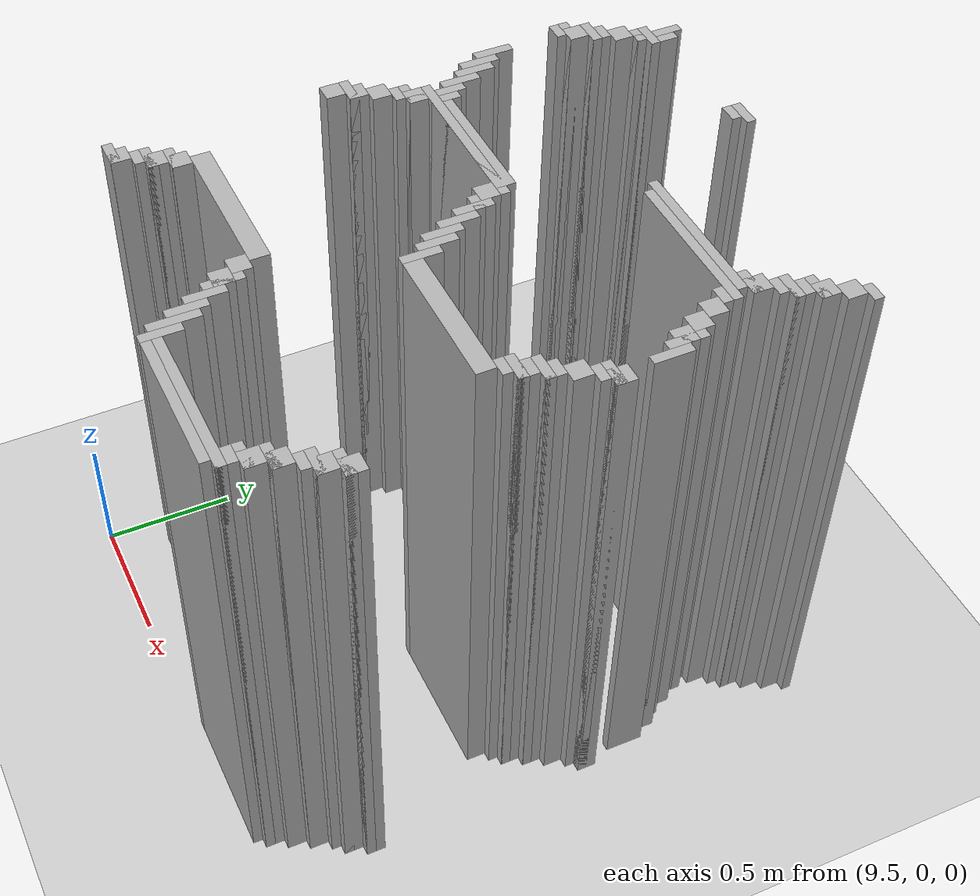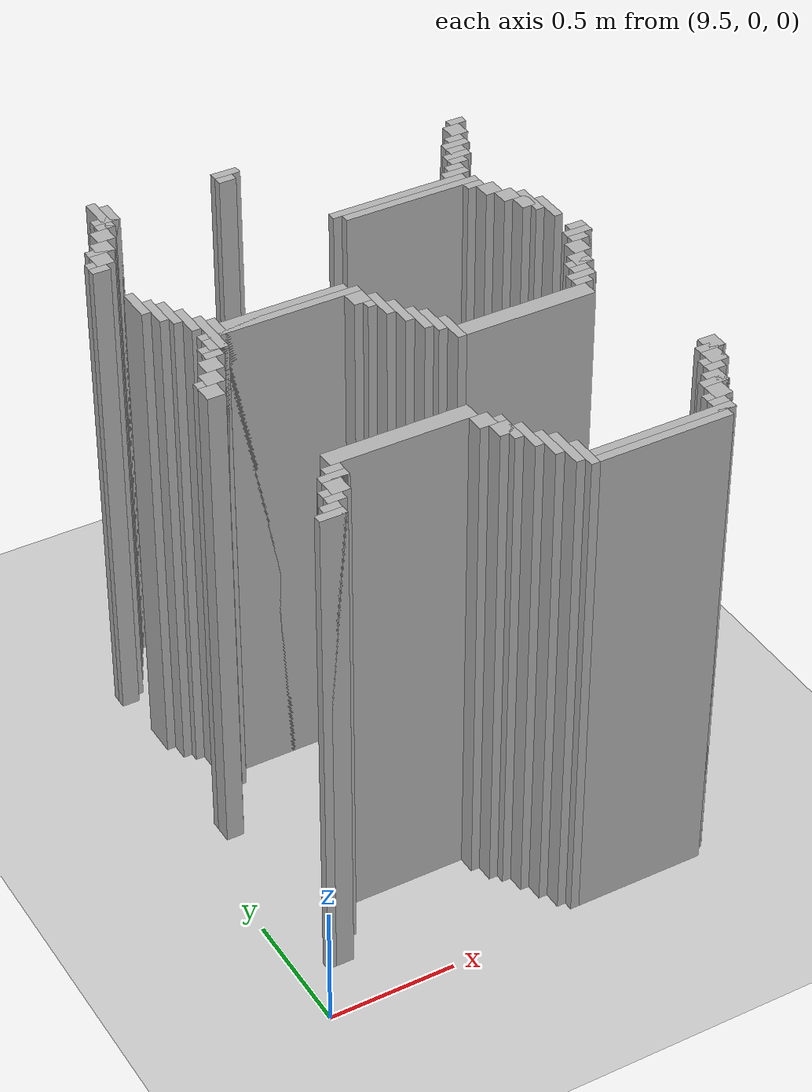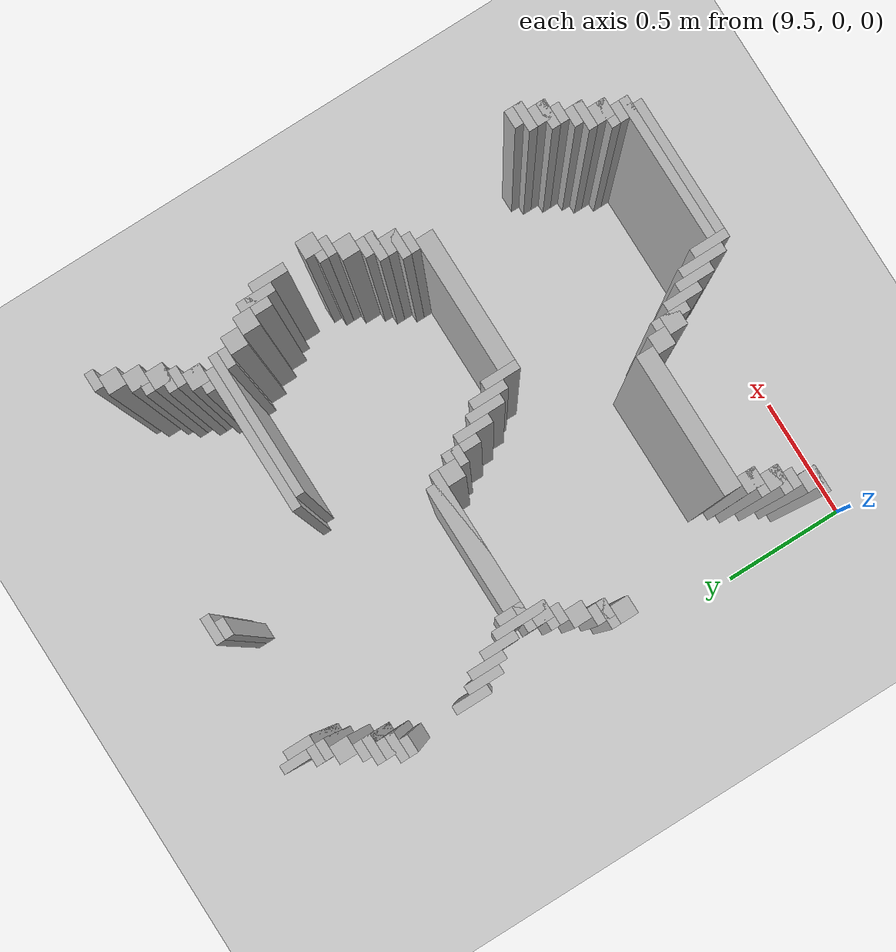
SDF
<sdf version="1.6">
 <world name="slam_world">
  <model name="ground_plane">
   <static>true</static>
   <link name="link">
    <collision name="collision">
     <geometry><plane><normal>0 0 1</normal><size>100 100</size></plane></geometry>
    </collision>
    <visual name="visual">
     <geometry><plane><normal>0 0 1</normal><size>100 100</size></plane></geometry>
     <material>
      <ambient>0.8 0.8 0.8 1</ambient>
      <diffuse>0.8 0.8 0.8 1</diffuse>
      <specular>0.8 0.8 0.8 1</specular>
     </material>
    </visual>
   </link>
  </model>
  <model name="wall_5127">
   <static>true</static>
   <pose>9.796983758700696 2.1751740139211138 1.0 0 0 0</pose>
   <link name="link">
    <collision name="collision">
     <geometry><box><size>0.03480278422273782 0.17401392111368907 2.0</size></box></geometry>
    </collision>
    <visual name="visual">
     <geometry><box><size>0.03480278422273782 0.17401392111368907 2.0</size></box></geometry>
     <material><ambient>0.5 0.5 0.5 1</ambient><diffuse>0.7 0.7 0.7 1</diffuse></material>
    </visual>
   </link>
  </model>
  <model name="wall_5141">
   <static>true</static>
   <pose>9.831786542923433 2.1751740139211138 1.0 0 0 0</pose>
   <link name="link">
    <collision name="collision">
     <geometry><box><size>0.03480278422273782 0.10440835266821345 2.0</size></box></geometry>
    </collision>
    <visual name="visual">
     <geometry><box><size>0.03480278422273782 0.10440835266821345 2.0</size></box></geometry>
     <material><ambient>0.5 0.5 0.5 1</ambient><diffuse>0.7 0.7 0.7 1</diffuse></material>
    </visual>
   </link>
  </model>
  <model name="wall_5142">
   <static>true</static>
   <pose>10.319025522041763 2.2099767981438516 1.0 0 0 0</pose>
   <link name="link">
    <collision name="collision">
     <geometry><box><size>0.10440835266821345 0.03480278422273782 2.0</size></box></geometry>
    </collision>
    <visual name="visual">
     <geometry><box><size>0.10440835266821345 0.03480278422273782 2.0</size></box></geometry>
     <material><ambient>0.5 0.5 0.5 1</ambient><diffuse>0.7 0.7 0.7 1</diffuse></material>
    </visual>
   </link>
  </model>
  <model name="wall_5155">
   <static>true</static>
   <pose>10.301624129930394 2.1751740139211138 1.0 0 0 0</pose>
   <link name="link">
    <collision name="collision">
     <geometry><box><size>0.06960556844547564 0.03480278422273782 2.0</size></box></geometry>
    </collision>
    <visual name="visual">
     <geometry><box><size>0.06960556844547564 0.03480278422273782 2.0</size></box></geometry>
     <material><ambient>0.5 0.5 0.5 1</ambient><diffuse>0.7 0.7 0.7 1</diffuse></material>
    </visual>
   </link>
  </model>
  <model name="wall_5171">
   <static>true</static>
   <pose>9.796983758700696 2.140371229698376 1.0 0 0 0</pose>
   <link name="link">
    <collision name="collision">
     <geometry><box><size>0.10440835266821345 0.03480278422273782 2.0</size></box></geometry>
    </collision>
    <visual name="visual">
     <geometry><box><size>0.10440835266821345 0.03480278422273782 2.0</size></box></geometry>
     <material><ambient>0.5 0.5 0.5 1</ambient><diffuse>0.7 0.7 0.7 1</diffuse></material>
    </visual>
   </link>
  </model>
  <model name="wall_5186">
   <static>true</static>
   <pose>9.779582366589327 2.105568445475638 1.0 0 0 0</pose>
   <link name="link">
    <collision name="collision">
     <geometry><box><size>0.06960556844547564 0.03480278422273782 2.0</size></box></geometry>
    </collision>
    <visual name="visual">
     <geometry><box><size>0.06960556844547564 0.03480278422273782 2.0</size></box></geometry>
     <material><ambient>0.5 0.5 0.5 1</ambient><diffuse>0.7 0.7 0.7 1</diffuse></material>
    </visual>
   </link>
  </model>
  <model name="wall_5187">
   <static>true</static>
   <pose>11.241299303944315 2.105568445475638 1.0 0 0 0</pose>
   <link name="link">
    <collision name="collision">
     <geometry><box><size>0.06960556844547564 0.03480278422273782 2.0</size></box></geometry>
    </collision>
    <visual name="visual">
     <geometry><box><size>0.06960556844547564 0.03480278422273782 2.0</size></box></geometry>
     <material><ambient>0.5 0.5 0.5 1</ambient><diffuse>0.7 0.7 0.7 1</diffuse></material>
    </visual>
   </link>
  </model>
  <model name="wall_5201">
   <static>true</static>
   <pose>9.744779582366588 2.053364269141531 1.0 0 0 0</pose>
   <link name="link">
    <collision name="collision">
     <geometry><box><size>0.06960556844547564 0.06960556844547564 2.0</size></box></geometry>
    </collision>
    <visual name="visual">
     <geometry><box><size>0.06960556844547564 0.06960556844547564 2.0</size></box></geometry>
     <material><ambient>0.5 0.5 0.5 1</ambient><diffuse>0.7 0.7 0.7 1</diffuse></material>
    </visual>
   </link>
  </model>
  <model name="wall_5202">
   <static>true</static>
   <pose>11.206496519721577 2.053364269141531 1.0 0 0 0</pose>
   <link name="link">
    <collision name="collision">
     <geometry><box><size>0.06960556844547564 0.06960556844547564 2.0</size></box></geometry>
    </collision>
    <visual name="visual">
     <geometry><box><size>0.06960556844547564 0.06960556844547564 2.0</size></box></geometry>
     <material><ambient>0.5 0.5 0.5 1</ambient><diffuse>0.7 0.7 0.7 1</diffuse></material>
    </visual>
   </link>
  </model>
  <model name="wall_5216">
   <static>true</static>
   <pose>9.70997679814385 1.9837587006960555 1.0 0 0 0</pose>
   <link name="link">
    <collision name="collision">
     <geometry><box><size>0.06960556844547564 0.06960556844547564 2.0</size></box></geometry>
    </collision>
    <visual name="visual">
     <geometry><box><size>0.06960556844547564 0.06960556844547564 2.0</size></box></geometry>
     <material><ambient>0.5 0.5 0.5 1</ambient><diffuse>0.7 0.7 0.7 1</diffuse></material>
    </visual>
   </link>
  </model>
  <model name="wall_5217">
   <static>true</static>
   <pose>11.17169373549884 1.9837587006960555 1.0 0 0 0</pose>
   <link name="link">
    <collision name="collision">
     <geometry><box><size>0.06960556844547564 0.06960556844547564 2.0</size></box></geometry>
    </collision>
    <visual name="visual">
     <geometry><box><size>0.06960556844547564 0.06960556844547564 2.0</size></box></geometry>
     <material><ambient>0.5 0.5 0.5 1</ambient><diffuse>0.7 0.7 0.7 1</diffuse></material>
    </visual>
   </link>
  </model>
  <model name="wall_5231">
   <static>true</static>
   <pose>9.692575406032482 1.9663573085846866 1.0 0 0 0</pose>
   <link name="link">
    <collision name="collision">
     <geometry><box><size>0.10440835266821345 0.03480278422273782 2.0</size></box></geometry>
    </collision>
    <visual name="visual">
     <geometry><box><size>0.10440835266821345 0.03480278422273782 2.0</size></box></geometry>
     <material><ambient>0.5 0.5 0.5 1</ambient><diffuse>0.7 0.7 0.7 1</diffuse></material>
    </visual>
   </link>
  </model>
  <model name="wall_5232">
   <static>true</static>
   <pose>11.154292343387471 1.9663573085846866 1.0 0 0 0</pose>
   <link name="link">
    <collision name="collision">
     <geometry><box><size>0.10440835266821345 0.03480278422273782 2.0</size></box></geometry>
    </collision>
    <visual name="visual">
     <geometry><box><size>0.10440835266821345 0.03480278422273782 2.0</size></box></geometry>
     <material><ambient>0.5 0.5 0.5 1</ambient><diffuse>0.7 0.7 0.7 1</diffuse></material>
    </visual>
   </link>
  </model>
  <model name="wall_5243">
   <static>true</static>
   <pose>9.675174013921113 1.91415313225058 1.0 0 0 0</pose>
   <link name="link">
    <collision name="collision">
     <geometry><box><size>0.06960556844547564 0.06960556844547564 2.0</size></box></geometry>
    </collision>
    <visual name="visual">
     <geometry><box><size>0.06960556844547564 0.06960556844547564 2.0</size></box></geometry>
     <material><ambient>0.5 0.5 0.5 1</ambient><diffuse>0.7 0.7 0.7 1</diffuse></material>
    </visual>
   </link>
  </model>
  <model name="wall_5244">
   <static>true</static>
   <pose>11.1368909512761 1.91415313225058 1.0 0 0 0</pose>
   <link name="link">
    <collision name="collision">
     <geometry><box><size>0.06960556844547564 0.06960556844547564 2.0</size></box></geometry>
    </collision>
    <visual name="visual">
     <geometry><box><size>0.06960556844547564 0.06960556844547564 2.0</size></box></geometry>
     <material><ambient>0.5 0.5 0.5 1</ambient><diffuse>0.7 0.7 0.7 1</diffuse></material>
    </visual>
   </link>
  </model>
  <model name="wall_5256">
   <static>true</static>
   <pose>9.657772621809745 1.896751740139211 1.0 0 0 0</pose>
   <link name="link">
    <collision name="collision">
     <geometry><box><size>0.10440835266821345 0.03480278422273782 2.0</size></box></geometry>
    </collision>
    <visual name="visual">
     <geometry><box><size>0.10440835266821345 0.03480278422273782 2.0</size></box></geometry>
     <material><ambient>0.5 0.5 0.5 1</ambient><diffuse>0.7 0.7 0.7 1</diffuse></material>
    </visual>
   </link>
  </model>
  <model name="wall_5257">
   <static>true</static>
   <pose>11.119489559164732 1.896751740139211 1.0 0 0 0</pose>
   <link name="link">
    <collision name="collision">
     <geometry><box><size>0.10440835266821345 0.03480278422273782 2.0</size></box></geometry>
    </collision>
    <visual name="visual">
     <geometry><box><size>0.10440835266821345 0.03480278422273782 2.0</size></box></geometry>
     <material><ambient>0.5 0.5 0.5 1</ambient><diffuse>0.7 0.7 0.7 1</diffuse></material>
    </visual>
   </link>
  </model>
  <model name="wall_5268">
   <static>true</static>
   <pose>9.640371229698376 1.8619489559164732 1.0 0 0 0</pose>
   <link name="link">
    <collision name="collision">
     <geometry><box><size>0.06960556844547564 0.03480278422273782 2.0</size></box></geometry>
    </collision>
    <visual name="visual">
     <geometry><box><size>0.06960556844547564 0.03480278422273782 2.0</size></box></geometry>
     <material><ambient>0.5 0.5 0.5 1</ambient><diffuse>0.7 0.7 0.7 1</diffuse></material>
    </visual>
   </link>
  </model>
  <model name="wall_5269">
   <static>true</static>
   <pose>11.102088167053363 1.8619489559164732 1.0 0 0 0</pose>
   <link name="link">
    <collision name="collision">
     <geometry><box><size>0.06960556844547564 0.03480278422273782 2.0</size></box></geometry>
    </collision>
    <visual name="visual">
     <geometry><box><size>0.06960556844547564 0.03480278422273782 2.0</size></box></geometry>
     <material><ambient>0.5 0.5 0.5 1</ambient><diffuse>0.7 0.7 0.7 1</diffuse></material>
    </visual>
   </link>
  </model>
  <model name="wall_5281">
   <static>true</static>
   <pose>11.067285382830626 1.8097447795823665 1.0 0 0 0</pose>
   <link name="link">
    <collision name="collision">
     <geometry><box><size>0.06960556844547564 0.06960556844547564 2.0</size></box></geometry>
    </collision>
    <visual name="visual">
     <geometry><box><size>0.06960556844547564 0.06960556844547564 2.0</size></box></geometry>
     <material><ambient>0.5 0.5 0.5 1</ambient><diffuse>0.7 0.7 0.7 1</diffuse></material>
    </visual>
   </link>
  </model>
  <model name="wall_5296">
   <static>true</static>
   <pose>11.049883990719257 1.7923433874709975 1.0 0 0 0</pose>
   <link name="link">
    <collision name="collision">
     <geometry><box><size>0.10440835266821345 0.03480278422273782 2.0</size></box></geometry>
    </collision>
    <visual name="visual">
     <geometry><box><size>0.10440835266821345 0.03480278422273782 2.0</size></box></geometry>
     <material><ambient>0.5 0.5 0.5 1</ambient><diffuse>0.7 0.7 0.7 1</diffuse></material>
    </visual>
   </link>
  </model>
  <model name="wall_5311">
   <static>true</static>
   <pose>10.788863109048723 1.75754060324826 1.0 0 0 0</pose>
   <link name="link">
    <collision name="collision">
     <geometry><box><size>0.5568445475638051 0.03480278422273782 2.0</size></box></geometry>
    </collision>
    <visual name="visual">
     <geometry><box><size>0.5568445475638051 0.03480278422273782 2.0</size></box></geometry>
     <material><ambient>0.5 0.5 0.5 1</ambient><diffuse>0.7 0.7 0.7 1</diffuse></material>
    </visual>
   </link>
  </model>
  <model name="wall_5323">
   <static>true</static>
   <pose>10.82366589327146 1.722737819025522 1.0 0 0 0</pose>
   <link name="link">
    <collision name="collision">
     <geometry><box><size>0.5568445475638051 0.03480278422273782 2.0</size></box></geometry>
    </collision>
    <visual name="visual">
     <geometry><box><size>0.5568445475638051 0.03480278422273782 2.0</size></box></geometry>
     <material><ambient>0.5 0.5 0.5 1</ambient><diffuse>0.7 0.7 0.7 1</diffuse></material>
    </visual>
   </link>
  </model>
  <model name="wall_5335">
   <static>true</static>
   <pose>11.067285382830626 1.6879350348027842 1.0 0 0 0</pose>
   <link name="link">
    <collision name="collision">
     <geometry><box><size>0.06960556844547564 0.03480278422273782 2.0</size></box></geometry>
    </collision>
    <visual name="visual">
     <geometry><box><size>0.06960556844547564 0.03480278422273782 2.0</size></box></geometry>
     <material><ambient>0.5 0.5 0.5 1</ambient><diffuse>0.7 0.7 0.7 1</diffuse></material>
    </visual>
   </link>
  </model>
  <model name="wall_5347">
   <static>true</static>
   <pose>9.657772621809745 1.6009280742459395 1.0 0 0 0</pose>
   <link name="link">
    <collision name="collision">
     <geometry><box><size>0.03480278422273782 0.13921113689095127 2.0</size></box></geometry>
    </collision>
    <visual name="visual">
     <geometry><box><size>0.03480278422273782 0.13921113689095127 2.0</size></box></geometry>
     <material><ambient>0.5 0.5 0.5 1</ambient><diffuse>0.7 0.7 0.7 1</diffuse></material>
    </visual>
   </link>
  </model>
  <model name="wall_5348">
   <static>true</static>
   <pose>11.102088167053363 1.6357308584686774 1.0 0 0 0</pose>
   <link name="link">
    <collision name="collision">
     <geometry><box><size>0.06960556844547564 0.06960556844547564 2.0</size></box></geometry>
    </collision>
    <visual name="visual">
     <geometry><box><size>0.06960556844547564 0.06960556844547564 2.0</size></box></geometry>
     <material><ambient>0.5 0.5 0.5 1</ambient><diffuse>0.7 0.7 0.7 1</diffuse></material>
    </visual>
   </link>
  </model>
  <model name="wall_5360">
   <static>true</static>
   <pose>9.692575406032482 1.531322505800464 1.0 0 0 0</pose>
   <link name="link">
    <collision name="collision">
     <geometry><box><size>0.03480278422273782 0.13921113689095127 2.0</size></box></geometry>
    </collision>
    <visual name="visual">
     <geometry><box><size>0.03480278422273782 0.13921113689095127 2.0</size></box></geometry>
     <material><ambient>0.5 0.5 0.5 1</ambient><diffuse>0.7 0.7 0.7 1</diffuse></material>
    </visual>
   </link>
  </model>
  <model name="wall_5361">
   <static>true</static>
   <pose>11.1368909512761 1.5661252900232019 1.0 0 0 0</pose>
   <link name="link">
    <collision name="collision">
     <geometry><box><size>0.06960556844547564 0.06960556844547564 2.0</size></box></geometry>
    </collision>
    <visual name="visual">
     <geometry><box><size>0.06960556844547564 0.06960556844547564 2.0</size></box></geometry>
     <material><ambient>0.5 0.5 0.5 1</ambient><diffuse>0.7 0.7 0.7 1</diffuse></material>
    </visual>
   </link>
  </model>
  <model name="wall_5373">
   <static>true</static>
   <pose>9.72737819025522 1.4965197215777262 1.0 0 0 0</pose>
   <link name="link">
    <collision name="collision">
     <geometry><box><size>0.03480278422273782 0.13921113689095127 2.0</size></box></geometry>
    </collision>
    <visual name="visual">
     <geometry><box><size>0.03480278422273782 0.13921113689095127 2.0</size></box></geometry>
     <material><ambient>0.5 0.5 0.5 1</ambient><diffuse>0.7 0.7 0.7 1</diffuse></material>
    </visual>
   </link>
  </model>
  <model name="wall_5374">
   <static>true</static>
   <pose>11.189095127610209 1.4965197215777262 1.0 0 0 0</pose>
   <link name="link">
    <collision name="collision">
     <geometry><box><size>0.03480278422273782 0.13921113689095127 2.0</size></box></geometry>
    </collision>
    <visual name="visual">
     <geometry><box><size>0.03480278422273782 0.13921113689095127 2.0</size></box></geometry>
     <material><ambient>0.5 0.5 0.5 1</ambient><diffuse>0.7 0.7 0.7 1</diffuse></material>
    </visual>
   </link>
  </model>
  <model name="wall_5384">
   <static>true</static>
   <pose>11.17169373549884 1.4965197215777262 1.0 0 0 0</pose>
   <link name="link">
    <collision name="collision">
     <geometry><box><size>0.06960556844547564 0.06960556844547564 2.0</size></box></geometry>
    </collision>
    <visual name="visual">
     <geometry><box><size>0.06960556844547564 0.06960556844547564 2.0</size></box></geometry>
     <material><ambient>0.5 0.5 0.5 1</ambient><diffuse>0.7 0.7 0.7 1</diffuse></material>
    </visual>
   </link>
  </model>
  <model name="wall_5395">
   <static>true</static>
   <pose>9.762180974477959 1.4269141531322505 1.0 0 0 0</pose>
   <link name="link">
    <collision name="collision">
     <geometry><box><size>0.03480278422273782 0.13921113689095127 2.0</size></box></geometry>
    </collision>
    <visual name="visual">
     <geometry><box><size>0.03480278422273782 0.13921113689095127 2.0</size></box></geometry>
     <material><ambient>0.5 0.5 0.5 1</ambient><diffuse>0.7 0.7 0.7 1</diffuse></material>
    </visual>
   </link>
  </model>
  <model name="wall_5396">
   <static>true</static>
   <pose>11.223897911832946 1.4269141531322505 1.0 0 0 0</pose>
   <link name="link">
    <collision name="collision">
     <geometry><box><size>0.03480278422273782 0.13921113689095127 2.0</size></box></geometry>
    </collision>
    <visual name="visual">
     <geometry><box><size>0.03480278422273782 0.13921113689095127 2.0</size></box></geometry>
     <material><ambient>0.5 0.5 0.5 1</ambient><diffuse>0.7 0.7 0.7 1</diffuse></material>
    </visual>
   </link>
  </model>
  <model name="wall_5415">
   <static>true</static>
   <pose>9.796983758700696 1.322505800464037 1.0 0 0 0</pose>
   <link name="link">
    <collision name="collision">
     <geometry><box><size>0.03480278422273782 0.2088167053364269 2.0</size></box></geometry>
    </collision>
    <visual name="visual">
     <geometry><box><size>0.03480278422273782 0.2088167053364269 2.0</size></box></geometry>
     <material><ambient>0.5 0.5 0.5 1</ambient><diffuse>0.7 0.7 0.7 1</diffuse></material>
    </visual>
   </link>
  </model>
  <model name="wall_5426">
   <static>true</static>
   <pose>9.831786542923433 1.339907192575406 1.0 0 0 0</pose>
   <link name="link">
    <collision name="collision">
     <geometry><box><size>0.03480278422273782 0.10440835266821345 2.0</size></box></geometry>
    </collision>
    <visual name="visual">
     <geometry><box><size>0.03480278422273782 0.10440835266821345 2.0</size></box></geometry>
     <material><ambient>0.5 0.5 0.5 1</ambient><diffuse>0.7 0.7 0.7 1</diffuse></material>
    </visual>
   </link>
  </model>
  <model name="wall_5438">
   <static>true</static>
   <pose>10.092807424593968 1.322505800464037 1.0 0 0 0</pose>
   <link name="link">
    <collision name="collision">
     <geometry><box><size>0.4872389791183295 0.06960556844547564 2.0</size></box></geometry>
    </collision>
    <visual name="visual">
     <geometry><box><size>0.4872389791183295 0.06960556844547564 2.0</size></box></geometry>
     <material><ambient>0.5 0.5 0.5 1</ambient><diffuse>0.7 0.7 0.7 1</diffuse></material>
    </visual>
   </link>
  </model>
  <model name="wall_5450">
   <static>true</static>
   <pose>10.058004640371228 1.3051044083526682 1.0 0 0 0</pose>
   <link name="link">
    <collision name="collision">
     <geometry><box><size>0.6264501160092807 0.03480278422273782 2.0</size></box></geometry>
    </collision>
    <visual name="visual">
     <geometry><box><size>0.6264501160092807 0.03480278422273782 2.0</size></box></geometry>
     <material><ambient>0.5 0.5 0.5 1</ambient><diffuse>0.7 0.7 0.7 1</diffuse></material>
    </visual>
   </link>
  </model>
  <model name="wall_5464">
   <static>true</static>
   <pose>9.779582366589327 1.2529002320185614 1.0 0 0 0</pose>
   <link name="link">
    <collision name="collision">
     <geometry><box><size>0.06960556844547564 0.06960556844547564 2.0</size></box></geometry>
    </collision>
    <visual name="visual">
     <geometry><box><size>0.06960556844547564 0.06960556844547564 2.0</size></box></geometry>
     <material><ambient>0.5 0.5 0.5 1</ambient><diffuse>0.7 0.7 0.7 1</diffuse></material>
    </visual>
   </link>
  </model>
  <model name="wall_5465">
   <static>true</static>
   <pose>10.336426914153131 1.2529002320185614 1.0 0 0 0</pose>
   <link name="link">
    <collision name="collision">
     <geometry><box><size>0.06960556844547564 0.06960556844547564 2.0</size></box></geometry>
    </collision>
    <visual name="visual">
     <geometry><box><size>0.06960556844547564 0.06960556844547564 2.0</size></box></geometry>
     <material><ambient>0.5 0.5 0.5 1</ambient><diffuse>0.7 0.7 0.7 1</diffuse></material>
    </visual>
   </link>
  </model>
  <model name="wall_5466">
   <static>true</static>
   <pose>11.241299303944315 1.2529002320185614 1.0 0 0 0</pose>
   <link name="link">
    <collision name="collision">
     <geometry><box><size>0.06960556844547564 0.06960556844547564 2.0</size></box></geometry>
    </collision>
    <visual name="visual">
     <geometry><box><size>0.06960556844547564 0.06960556844547564 2.0</size></box></geometry>
     <material><ambient>0.5 0.5 0.5 1</ambient><diffuse>0.7 0.7 0.7 1</diffuse></material>
    </visual>
   </link>
  </model>
  <model name="wall_5479">
   <static>true</static>
   <pose>9.762180974477959 1.2354988399071924 1.0 0 0 0</pose>
   <link name="link">
    <collision name="collision">
     <geometry><box><size>0.10440835266821345 0.03480278422273782 2.0</size></box></geometry>
    </collision>
    <visual name="visual">
     <geometry><box><size>0.10440835266821345 0.03480278422273782 2.0</size></box></geometry>
     <material><ambient>0.5 0.5 0.5 1</ambient><diffuse>0.7 0.7 0.7 1</diffuse></material>
    </visual>
   </link>
  </model>
  <model name="wall_5480">
   <static>true</static>
   <pose>10.38863109048724 1.1832946635730859 1.0 0 0 0</pose>
   <link name="link">
    <collision name="collision">
     <geometry><box><size>0.03480278422273782 0.13921113689095127 2.0</size></box></geometry>
    </collision>
    <visual name="visual">
     <geometry><box><size>0.03480278422273782 0.13921113689095127 2.0</size></box></geometry>
     <material><ambient>0.5 0.5 0.5 1</ambient><diffuse>0.7 0.7 0.7 1</diffuse></material>
    </visual>
   </link>
  </model>
  <model name="wall_5481">
   <static>true</static>
   <pose>11.223897911832946 1.2354988399071924 1.0 0 0 0</pose>
   <link name="link">
    <collision name="collision">
     <geometry><box><size>0.10440835266821345 0.03480278422273782 2.0</size></box></geometry>
    </collision>
    <visual name="visual">
     <geometry><box><size>0.10440835266821345 0.03480278422273782 2.0</size></box></geometry>
     <material><ambient>0.5 0.5 0.5 1</ambient><diffuse>0.7 0.7 0.7 1</diffuse></material>
    </visual>
   </link>
  </model>
  <model name="wall_5493">
   <static>true</static>
   <pose>9.744779582366588 1.2006960556844548 1.0 0 0 0</pose>
   <link name="link">
    <collision name="collision">
     <geometry><box><size>0.06960556844547564 0.03480278422273782 2.0</size></box></geometry>
    </collision>
    <visual name="visual">
     <geometry><box><size>0.06960556844547564 0.03480278422273782 2.0</size></box></geometry>
     <material><ambient>0.5 0.5 0.5 1</ambient><diffuse>0.7 0.7 0.7 1</diffuse></material>
    </visual>
   </link>
  </model>
  <model name="wall_5494">
   <static>true</static>
   <pose>10.37122969837587 1.2006960556844548 1.0 0 0 0</pose>
   <link name="link">
    <collision name="collision">
     <geometry><box><size>0.06960556844547564 0.03480278422273782 2.0</size></box></geometry>
    </collision>
    <visual name="visual">
     <geometry><box><size>0.06960556844547564 0.03480278422273782 2.0</size></box></geometry>
     <material><ambient>0.5 0.5 0.5 1</ambient><diffuse>0.7 0.7 0.7 1</diffuse></material>
    </visual>
   </link>
  </model>
  <model name="wall_5495">
   <static>true</static>
   <pose>11.206496519721577 1.2006960556844548 1.0 0 0 0</pose>
   <link name="link">
    <collision name="collision">
     <geometry><box><size>0.06960556844547564 0.03480278422273782 2.0</size></box></geometry>
    </collision>
    <visual name="visual">
     <geometry><box><size>0.06960556844547564 0.03480278422273782 2.0</size></box></geometry>
     <material><ambient>0.5 0.5 0.5 1</ambient><diffuse>0.7 0.7 0.7 1</diffuse></material>
    </visual>
   </link>
  </model>
  <model name="wall_5506">
   <static>true</static>
   <pose>9.70997679814385 1.148491879350348 1.0 0 0 0</pose>
   <link name="link">
    <collision name="collision">
     <geometry><box><size>0.06960556844547564 0.06960556844547564 2.0</size></box></geometry>
    </collision>
    <visual name="visual">
     <geometry><box><size>0.06960556844547564 0.06960556844547564 2.0</size></box></geometry>
     <material><ambient>0.5 0.5 0.5 1</ambient><diffuse>0.7 0.7 0.7 1</diffuse></material>
    </visual>
   </link>
  </model>
  <model name="wall_5507">
   <static>true</static>
   <pose>10.423433874709977 1.1136890951276102 1.0 0 0 0</pose>
   <link name="link">
    <collision name="collision">
     <geometry><box><size>0.03480278422273782 0.13921113689095127 2.0</size></box></geometry>
    </collision>
    <visual name="visual">
     <geometry><box><size>0.03480278422273782 0.13921113689095127 2.0</size></box></geometry>
     <material><ambient>0.5 0.5 0.5 1</ambient><diffuse>0.7 0.7 0.7 1</diffuse></material>
    </visual>
   </link>
  </model>
  <model name="wall_5508">
   <static>true</static>
   <pose>11.17169373549884 1.148491879350348 1.0 0 0 0</pose>
   <link name="link">
    <collision name="collision">
     <geometry><box><size>0.06960556844547564 0.06960556844547564 2.0</size></box></geometry>
    </collision>
    <visual name="visual">
     <geometry><box><size>0.06960556844547564 0.06960556844547564 2.0</size></box></geometry>
     <material><ambient>0.5 0.5 0.5 1</ambient><diffuse>0.7 0.7 0.7 1</diffuse></material>
    </visual>
   </link>
  </model>
  <model name="wall_5521">
   <static>true</static>
   <pose>9.675174013921113 1.0788863109048723 1.0 0 0 0</pose>
   <link name="link">
    <collision name="collision">
     <geometry><box><size>0.06960556844547564 0.06960556844547564 2.0</size></box></geometry>
    </collision>
    <visual name="visual">
     <geometry><box><size>0.06960556844547564 0.06960556844547564 2.0</size></box></geometry>
     <material><ambient>0.5 0.5 0.5 1</ambient><diffuse>0.7 0.7 0.7 1</diffuse></material>
    </visual>
   </link>
  </model>
  <model name="wall_5522">
   <static>true</static>
   <pose>10.458236658932714 1.0440835266821344 1.0 0 0 0</pose>
   <link name="link">
    <collision name="collision">
     <geometry><box><size>0.03480278422273782 0.13921113689095127 2.0</size></box></geometry>
    </collision>
    <visual name="visual">
     <geometry><box><size>0.03480278422273782 0.13921113689095127 2.0</size></box></geometry>
     <material><ambient>0.5 0.5 0.5 1</ambient><diffuse>0.7 0.7 0.7 1</diffuse></material>
    </visual>
   </link>
  </model>
  <model name="wall_5523">
   <static>true</static>
   <pose>11.1368909512761 1.0788863109048723 1.0 0 0 0</pose>
   <link name="link">
    <collision name="collision">
     <geometry><box><size>0.06960556844547564 0.06960556844547564 2.0</size></box></geometry>
    </collision>
    <visual name="visual">
     <geometry><box><size>0.06960556844547564 0.06960556844547564 2.0</size></box></geometry>
     <material><ambient>0.5 0.5 0.5 1</ambient><diffuse>0.7 0.7 0.7 1</diffuse></material>
    </visual>
   </link>
  </model>
  <model name="wall_5536">
   <static>true</static>
   <pose>9.657772621809745 1.0614849187935034 1.0 0 0 0</pose>
   <link name="link">
    <collision name="collision">
     <geometry><box><size>0.10440835266821345 0.03480278422273782 2.0</size></box></geometry>
    </collision>
    <visual name="visual">
     <geometry><box><size>0.10440835266821345 0.03480278422273782 2.0</size></box></geometry>
     <material><ambient>0.5 0.5 0.5 1</ambient><diffuse>0.7 0.7 0.7 1</diffuse></material>
    </visual>
   </link>
  </model>
  <model name="wall_5537">
   <static>true</static>
   <pose>10.493039443155451 1.0092807424593968 1.0 0 0 0</pose>
   <link name="link">
    <collision name="collision">
     <geometry><box><size>0.03480278422273782 0.13921113689095127 2.0</size></box></geometry>
    </collision>
    <visual name="visual">
     <geometry><box><size>0.03480278422273782 0.13921113689095127 2.0</size></box></geometry>
     <material><ambient>0.5 0.5 0.5 1</ambient><diffuse>0.7 0.7 0.7 1</diffuse></material>
    </visual>
   </link>
  </model>
  <model name="wall_5538">
   <static>true</static>
   <pose>11.119489559164732 1.0614849187935034 1.0 0 0 0</pose>
   <link name="link">
    <collision name="collision">
     <geometry><box><size>0.10440835266821345 0.03480278422273782 2.0</size></box></geometry>
    </collision>
    <visual name="visual">
     <geometry><box><size>0.10440835266821345 0.03480278422273782 2.0</size></box></geometry>
     <material><ambient>0.5 0.5 0.5 1</ambient><diffuse>0.7 0.7 0.7 1</diffuse></material>
    </visual>
   </link>
  </model>
  <model name="wall_5548">
   <static>true</static>
   <pose>9.640371229698376 1.0092807424593968 1.0 0 0 0</pose>
   <link name="link">
    <collision name="collision">
     <geometry><box><size>0.06960556844547564 0.06960556844547564 2.0</size></box></geometry>
    </collision>
    <visual name="visual">
     <geometry><box><size>0.06960556844547564 0.06960556844547564 2.0</size></box></geometry>
     <material><ambient>0.5 0.5 0.5 1</ambient><diffuse>0.7 0.7 0.7 1</diffuse></material>
    </visual>
   </link>
  </model>
  <model name="wall_5549">
   <static>true</static>
   <pose>11.102088167053363 1.0092807424593968 1.0 0 0 0</pose>
   <link name="link">
    <collision name="collision">
     <geometry><box><size>0.06960556844547564 0.06960556844547564 2.0</size></box></geometry>
    </collision>
    <visual name="visual">
     <geometry><box><size>0.06960556844547564 0.06960556844547564 2.0</size></box></geometry>
     <material><ambient>0.5 0.5 0.5 1</ambient><diffuse>0.7 0.7 0.7 1</diffuse></material>
    </visual>
   </link>
  </model>
  <model name="wall_5561">
   <static>true</static>
   <pose>10.52784222737819 0.9396751740139211 1.0 0 0 0</pose>
   <link name="link">
    <collision name="collision">
     <geometry><box><size>0.03480278422273782 0.13921113689095127 2.0</size></box></geometry>
    </collision>
    <visual name="visual">
     <geometry><box><size>0.03480278422273782 0.13921113689095127 2.0</size></box></geometry>
     <material><ambient>0.5 0.5 0.5 1</ambient><diffuse>0.7 0.7 0.7 1</diffuse></material>
    </visual>
   </link>
  </model>
  <model name="wall_5562">
   <static>true</static>
   <pose>11.084686774941995 0.9918793503480278 1.0 0 0 0</pose>
   <link name="link">
    <collision name="collision">
     <geometry><box><size>0.10440835266821345 0.03480278422273782 2.0</size></box></geometry>
    </collision>
    <visual name="visual">
     <geometry><box><size>0.10440835266821345 0.03480278422273782 2.0</size></box></geometry>
     <material><ambient>0.5 0.5 0.5 1</ambient><diffuse>0.7 0.7 0.7 1</diffuse></material>
    </visual>
   </link>
  </model>
  <model name="wall_5573">
   <static>true</static>
   <pose>11.067285382830626 0.95707656612529 1.0 0 0 0</pose>
   <link name="link">
    <collision name="collision">
     <geometry><box><size>0.06960556844547564 0.03480278422273782 2.0</size></box></geometry>
    </collision>
    <visual name="visual">
     <geometry><box><size>0.06960556844547564 0.03480278422273782 2.0</size></box></geometry>
     <material><ambient>0.5 0.5 0.5 1</ambient><diffuse>0.7 0.7 0.7 1</diffuse></material>
    </visual>
   </link>
  </model>
  <model name="wall_5583">
   <static>true</static>
   <pose>10.806264501160092 0.9048723897911832 1.0 0 0 0</pose>
   <link name="link">
    <collision name="collision">
     <geometry><box><size>0.5220417633410672 0.06960556844547564 2.0</size></box></geometry>
    </collision>
    <visual name="visual">
     <geometry><box><size>0.5220417633410672 0.06960556844547564 2.0</size></box></geometry>
     <material><ambient>0.5 0.5 0.5 1</ambient><diffuse>0.7 0.7 0.7 1</diffuse></material>
    </visual>
   </link>
  </model>
  <model name="wall_5656">
   <static>true</static>
   <pose>10.058004640371228 0.4872389791183295 1.0 0 0 0</pose>
   <link name="link">
    <collision name="collision">
     <geometry><box><size>0.5568445475638051 0.06960556844547564 2.0</size></box></geometry>
    </collision>
    <visual name="visual">
     <geometry><box><size>0.5568445475638051 0.06960556844547564 2.0</size></box></geometry>
     <material><ambient>0.5 0.5 0.5 1</ambient><diffuse>0.7 0.7 0.7 1</diffuse></material>
    </visual>
   </link>
  </model>
  <model name="wall_5673">
   <static>true</static>
   <pose>9.779582366589327 0.4176334106728538 1.0 0 0 0</pose>
   <link name="link">
    <collision name="collision">
     <geometry><box><size>0.06960556844547564 0.06960556844547564 2.0</size></box></geometry>
    </collision>
    <visual name="visual">
     <geometry><box><size>0.06960556844547564 0.06960556844547564 2.0</size></box></geometry>
     <material><ambient>0.5 0.5 0.5 1</ambient><diffuse>0.7 0.7 0.7 1</diffuse></material>
    </visual>
   </link>
  </model>
  <model name="wall_5674">
   <static>true</static>
   <pose>10.336426914153131 0.4176334106728538 1.0 0 0 0</pose>
   <link name="link">
    <collision name="collision">
     <geometry><box><size>0.06960556844547564 0.06960556844547564 2.0</size></box></geometry>
    </collision>
    <visual name="visual">
     <geometry><box><size>0.06960556844547564 0.06960556844547564 2.0</size></box></geometry>
     <material><ambient>0.5 0.5 0.5 1</ambient><diffuse>0.7 0.7 0.7 1</diffuse></material>
    </visual>
   </link>
  </model>
  <model name="wall_5675">
   <static>true</static>
   <pose>11.241299303944315 0.4176334106728538 1.0 0 0 0</pose>
   <link name="link">
    <collision name="collision">
     <geometry><box><size>0.06960556844547564 0.06960556844547564 2.0</size></box></geometry>
    </collision>
    <visual name="visual">
     <geometry><box><size>0.06960556844547564 0.06960556844547564 2.0</size></box></geometry>
     <material><ambient>0.5 0.5 0.5 1</ambient><diffuse>0.7 0.7 0.7 1</diffuse></material>
    </visual>
   </link>
  </model>
  <model name="wall_5693">
   <static>true</static>
   <pose>9.762180974477959 0.4002320185614849 1.0 0 0 0</pose>
   <link name="link">
    <collision name="collision">
     <geometry><box><size>0.10440835266821345 0.03480278422273782 2.0</size></box></geometry>
    </collision>
    <visual name="visual">
     <geometry><box><size>0.10440835266821345 0.03480278422273782 2.0</size></box></geometry>
     <material><ambient>0.5 0.5 0.5 1</ambient><diffuse>0.7 0.7 0.7 1</diffuse></material>
    </visual>
   </link>
  </model>
  <model name="wall_5694">
   <static>true</static>
   <pose>10.38863109048724 0.34802784222737815 1.0 0 0 0</pose>
   <link name="link">
    <collision name="collision">
     <geometry><box><size>0.03480278422273782 0.13921113689095127 2.0</size></box></geometry>
    </collision>
    <visual name="visual">
     <geometry><box><size>0.03480278422273782 0.13921113689095127 2.0</size></box></geometry>
     <material><ambient>0.5 0.5 0.5 1</ambient><diffuse>0.7 0.7 0.7 1</diffuse></material>
    </visual>
   </link>
  </model>
  <model name="wall_5695">
   <static>true</static>
   <pose>11.223897911832946 0.4002320185614849 1.0 0 0 0</pose>
   <link name="link">
    <collision name="collision">
     <geometry><box><size>0.10440835266821345 0.03480278422273782 2.0</size></box></geometry>
    </collision>
    <visual name="visual">
     <geometry><box><size>0.10440835266821345 0.03480278422273782 2.0</size></box></geometry>
     <material><ambient>0.5 0.5 0.5 1</ambient><diffuse>0.7 0.7 0.7 1</diffuse></material>
    </visual>
   </link>
  </model>
  <model name="wall_5713">
   <static>true</static>
   <pose>9.744779582366588 0.34802784222737815 1.0 0 0 0</pose>
   <link name="link">
    <collision name="collision">
     <geometry><box><size>0.06960556844547564 0.06960556844547564 2.0</size></box></geometry>
    </collision>
    <visual name="visual">
     <geometry><box><size>0.06960556844547564 0.06960556844547564 2.0</size></box></geometry>
     <material><ambient>0.5 0.5 0.5 1</ambient><diffuse>0.7 0.7 0.7 1</diffuse></material>
    </visual>
   </link>
  </model>
  <model name="wall_5714">
   <static>true</static>
   <pose>10.37122969837587 0.34802784222737815 1.0 0 0 0</pose>
   <link name="link">
    <collision name="collision">
     <geometry><box><size>0.06960556844547564 0.06960556844547564 2.0</size></box></geometry>
    </collision>
    <visual name="visual">
     <geometry><box><size>0.06960556844547564 0.06960556844547564 2.0</size></box></geometry>
     <material><ambient>0.5 0.5 0.5 1</ambient><diffuse>0.7 0.7 0.7 1</diffuse></material>
    </visual>
   </link>
  </model>
  <model name="wall_5715">
   <static>true</static>
   <pose>11.206496519721577 0.34802784222737815 1.0 0 0 0</pose>
   <link name="link">
    <collision name="collision">
     <geometry><box><size>0.06960556844547564 0.06960556844547564 2.0</size></box></geometry>
    </collision>
    <visual name="visual">
     <geometry><box><size>0.06960556844547564 0.06960556844547564 2.0</size></box></geometry>
     <material><ambient>0.5 0.5 0.5 1</ambient><diffuse>0.7 0.7 0.7 1</diffuse></material>
    </visual>
   </link>
  </model>
  <model name="wall_5733">
   <static>true</static>
   <pose>9.72737819025522 0.3306264501160093 1.0 0 0 0</pose>
   <link name="link">
    <collision name="collision">
     <geometry><box><size>0.10440835266821345 0.03480278422273782 2.0</size></box></geometry>
    </collision>
    <visual name="visual">
     <geometry><box><size>0.10440835266821345 0.03480278422273782 2.0</size></box></geometry>
     <material><ambient>0.5 0.5 0.5 1</ambient><diffuse>0.7 0.7 0.7 1</diffuse></material>
    </visual>
   </link>
  </model>
  <model name="wall_5734">
   <static>true</static>
   <pose>10.423433874709977 0.27842227378190254 1.0 0 0 0</pose>
   <link name="link">
    <collision name="collision">
     <geometry><box><size>0.03480278422273782 0.13921113689095127 2.0</size></box></geometry>
    </collision>
    <visual name="visual">
     <geometry><box><size>0.03480278422273782 0.13921113689095127 2.0</size></box></geometry>
     <material><ambient>0.5 0.5 0.5 1</ambient><diffuse>0.7 0.7 0.7 1</diffuse></material>
    </visual>
   </link>
  </model>
  <model name="wall_5735">
   <static>true</static>
   <pose>11.189095127610209 0.3306264501160093 1.0 0 0 0</pose>
   <link name="link">
    <collision name="collision">
     <geometry><box><size>0.10440835266821345 0.03480278422273782 2.0</size></box></geometry>
    </collision>
    <visual name="visual">
     <geometry><box><size>0.10440835266821345 0.03480278422273782 2.0</size></box></geometry>
     <material><ambient>0.5 0.5 0.5 1</ambient><diffuse>0.7 0.7 0.7 1</diffuse></material>
    </visual>
   </link>
  </model>
  <model name="wall_5746">
   <static>true</static>
   <pose>9.70997679814385 0.29582366589327147 1.0 0 0 0</pose>
   <link name="link">
    <collision name="collision">
     <geometry><box><size>0.06960556844547564 0.03480278422273782 2.0</size></box></geometry>
    </collision>
    <visual name="visual">
     <geometry><box><size>0.06960556844547564 0.03480278422273782 2.0</size></box></geometry>
     <material><ambient>0.5 0.5 0.5 1</ambient><diffuse>0.7 0.7 0.7 1</diffuse></material>
    </visual>
   </link>
  </model>
  <model name="wall_5747">
   <static>true</static>
   <pose>11.17169373549884 0.29582366589327147 1.0 0 0 0</pose>
   <link name="link">
    <collision name="collision">
     <geometry><box><size>0.06960556844547564 0.03480278422273782 2.0</size></box></geometry>
    </collision>
    <visual name="visual">
     <geometry><box><size>0.06960556844547564 0.03480278422273782 2.0</size></box></geometry>
     <material><ambient>0.5 0.5 0.5 1</ambient><diffuse>0.7 0.7 0.7 1</diffuse></material>
    </visual>
   </link>
  </model>
  <model name="wall_5763">
   <static>true</static>
   <pose>9.675174013921113 0.24361948955916474 1.0 0 0 0</pose>
   <link name="link">
    <collision name="collision">
     <geometry><box><size>0.06960556844547564 0.06960556844547564 2.0</size></box></geometry>
    </collision>
    <visual name="visual">
     <geometry><box><size>0.06960556844547564 0.06960556844547564 2.0</size></box></geometry>
     <material><ambient>0.5 0.5 0.5 1</ambient><diffuse>0.7 0.7 0.7 1</diffuse></material>
    </visual>
   </link>
  </model>
  <model name="wall_5764">
   <static>true</static>
   <pose>10.458236658932714 0.2088167053364269 1.0 0 0 0</pose>
   <link name="link">
    <collision name="collision">
     <geometry><box><size>0.03480278422273782 0.13921113689095127 2.0</size></box></geometry>
    </collision>
    <visual name="visual">
     <geometry><box><size>0.03480278422273782 0.13921113689095127 2.0</size></box></geometry>
     <material><ambient>0.5 0.5 0.5 1</ambient><diffuse>0.7 0.7 0.7 1</diffuse></material>
    </visual>
   </link>
  </model>
  <model name="wall_5765">
   <static>true</static>
   <pose>11.1368909512761 0.24361948955916474 1.0 0 0 0</pose>
   <link name="link">
    <collision name="collision">
     <geometry><box><size>0.06960556844547564 0.06960556844547564 2.0</size></box></geometry>
    </collision>
    <visual name="visual">
     <geometry><box><size>0.06960556844547564 0.06960556844547564 2.0</size></box></geometry>
     <material><ambient>0.5 0.5 0.5 1</ambient><diffuse>0.7 0.7 0.7 1</diffuse></material>
    </visual>
   </link>
  </model>
  <model name="wall_5783">
   <static>true</static>
   <pose>9.657772621809745 0.2262180974477958 1.0 0 0 0</pose>
   <link name="link">
    <collision name="collision">
     <geometry><box><size>0.10440835266821345 0.03480278422273782 2.0</size></box></geometry>
    </collision>
    <visual name="visual">
     <geometry><box><size>0.10440835266821345 0.03480278422273782 2.0</size></box></geometry>
     <material><ambient>0.5 0.5 0.5 1</ambient><diffuse>0.7 0.7 0.7 1</diffuse></material>
    </visual>
   </link>
  </model>
  <model name="wall_5784">
   <static>true</static>
   <pose>10.493039443155451 0.15661252900232017 1.0 0 0 0</pose>
   <link name="link">
    <collision name="collision">
     <geometry><box><size>0.03480278422273782 0.17401392111368907 2.0</size></box></geometry>
    </collision>
    <visual name="visual">
     <geometry><box><size>0.03480278422273782 0.17401392111368907 2.0</size></box></geometry>
     <material><ambient>0.5 0.5 0.5 1</ambient><diffuse>0.7 0.7 0.7 1</diffuse></material>
    </visual>
   </link>
  </model>
  <model name="wall_5785">
   <static>true</static>
   <pose>11.119489559164732 0.2262180974477958 1.0 0 0 0</pose>
   <link name="link">
    <collision name="collision">
     <geometry><box><size>0.10440835266821345 0.03480278422273782 2.0</size></box></geometry>
    </collision>
    <visual name="visual">
     <geometry><box><size>0.10440835266821345 0.03480278422273782 2.0</size></box></geometry>
     <material><ambient>0.5 0.5 0.5 1</ambient><diffuse>0.7 0.7 0.7 1</diffuse></material>
    </visual>
   </link>
  </model>
  <model name="wall_5797">
   <static>true</static>
   <pose>11.102088167053363 0.17401392111368907 1.0 0 0 0</pose>
   <link name="link">
    <collision name="collision">
     <geometry><box><size>0.06960556844547564 0.06960556844547564 2.0</size></box></geometry>
    </collision>
    <visual name="visual">
     <geometry><box><size>0.06960556844547564 0.06960556844547564 2.0</size></box></geometry>
     <material><ambient>0.5 0.5 0.5 1</ambient><diffuse>0.7 0.7 0.7 1</diffuse></material>
    </visual>
   </link>
  </model>
  <model name="wall_5814">
   <static>true</static>
   <pose>10.52784222737819 0.10440835266821345 1.0 0 0 0</pose>
   <link name="link">
    <collision name="collision">
     <geometry><box><size>0.03480278422273782 0.13921113689095127 2.0</size></box></geometry>
    </collision>
    <visual name="visual">
     <geometry><box><size>0.03480278422273782 0.13921113689095127 2.0</size></box></geometry>
     <material><ambient>0.5 0.5 0.5 1</ambient><diffuse>0.7 0.7 0.7 1</diffuse></material>
    </visual>
   </link>
  </model>
  <model name="wall_5815">
   <static>true</static>
   <pose>11.084686774941995 0.15661252900232017 1.0 0 0 0</pose>
   <link name="link">
    <collision name="collision">
     <geometry><box><size>0.10440835266821345 0.03480278422273782 2.0</size></box></geometry>
    </collision>
    <visual name="visual">
     <geometry><box><size>0.10440835266821345 0.03480278422273782 2.0</size></box></geometry>
     <material><ambient>0.5 0.5 0.5 1</ambient><diffuse>0.7 0.7 0.7 1</diffuse></material>
    </visual>
   </link>
  </model>
  <model name="wall_5827">
   <static>true</static>
   <pose>11.067285382830626 0.10440835266821345 1.0 0 0 0</pose>
   <link name="link">
    <collision name="collision">
     <geometry><box><size>0.06960556844547564 0.06960556844547564 2.0</size></box></geometry>
    </collision>
    <visual name="visual">
     <geometry><box><size>0.06960556844547564 0.06960556844547564 2.0</size></box></geometry>
     <material><ambient>0.5 0.5 0.5 1</ambient><diffuse>0.7 0.7 0.7 1</diffuse></material>
    </visual>
   </link>
  </model>
  <model name="wall_5838">
   <static>true</static>
   <pose>10.82366589327146 0.08700696055684454 1.0 0 0 0</pose>
   <link name="link">
    <collision name="collision">
     <geometry><box><size>0.5568445475638051 0.03480278422273782 2.0</size></box></geometry>
    </collision>
    <visual name="visual">
     <geometry><box><size>0.5568445475638051 0.03480278422273782 2.0</size></box></geometry>
     <material><ambient>0.5 0.5 0.5 1</ambient><diffuse>0.7 0.7 0.7 1</diffuse></material>
    </visual>
   </link>
  </model>
  <model name="wall_5848">
   <static>true</static>
   <pose>10.806264501160092 0.052204176334106726 1.0 0 0 0</pose>
   <link name="link">
    <collision name="collision">
     <geometry><box><size>0.5220417633410672 0.03480278422273782 2.0</size></box></geometry>
    </collision>
    <visual name="visual">
     <geometry><box><size>0.5220417633410672 0.03480278422273782 2.0</size></box></geometry>
     <material><ambient>0.5 0.5 0.5 1</ambient><diffuse>0.7 0.7 0.7 1</diffuse></material>
    </visual>
   </link>
  </model>
 </world>
</sdf>
